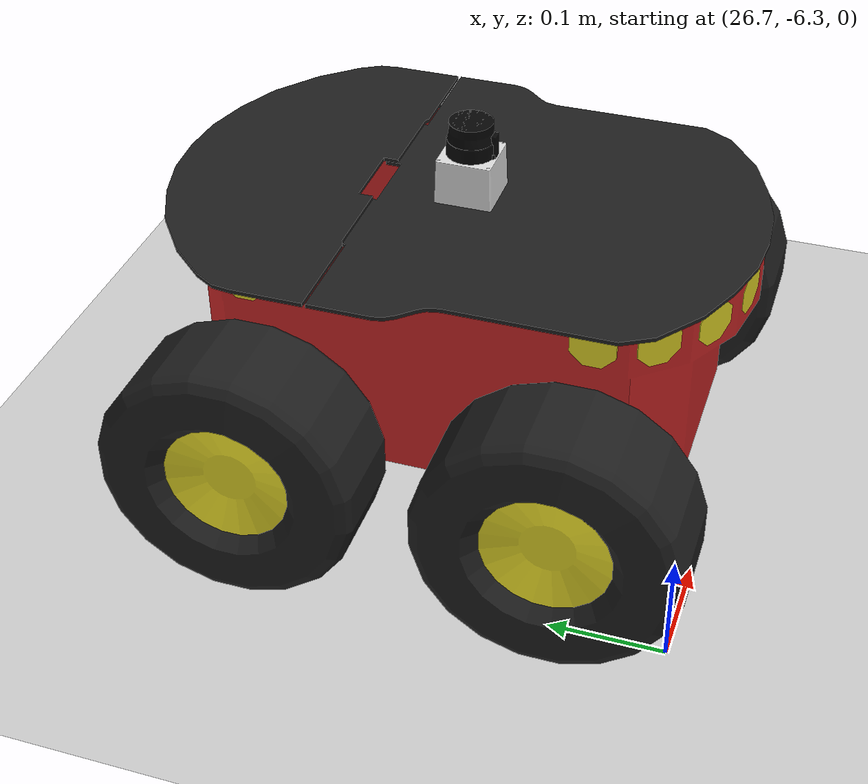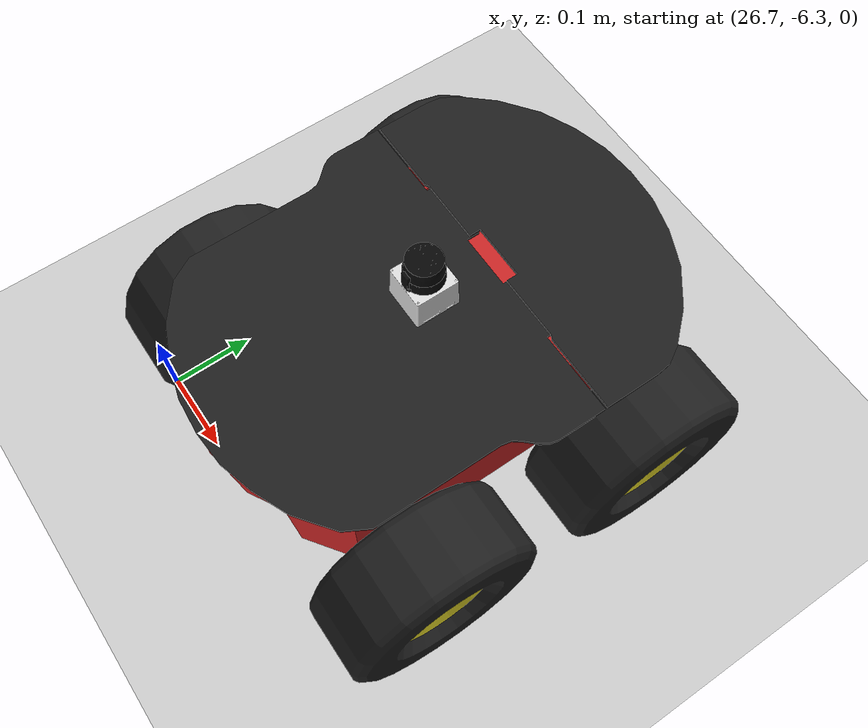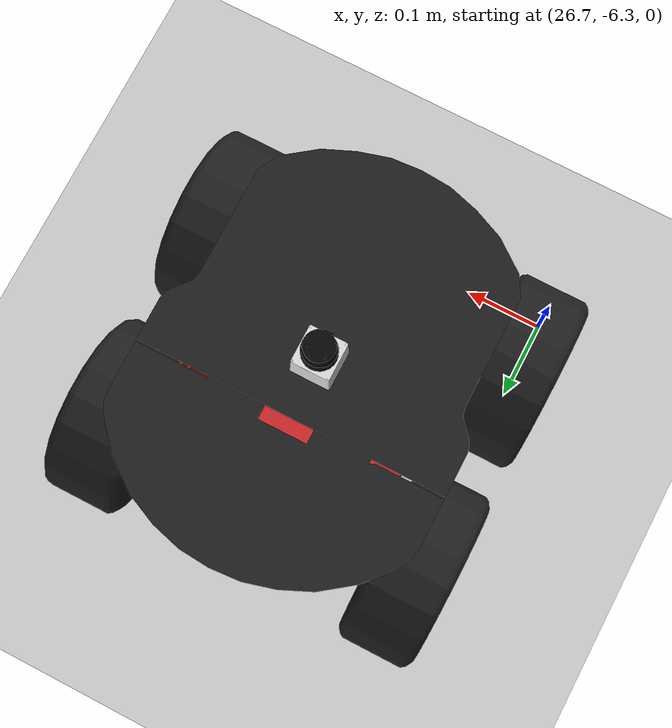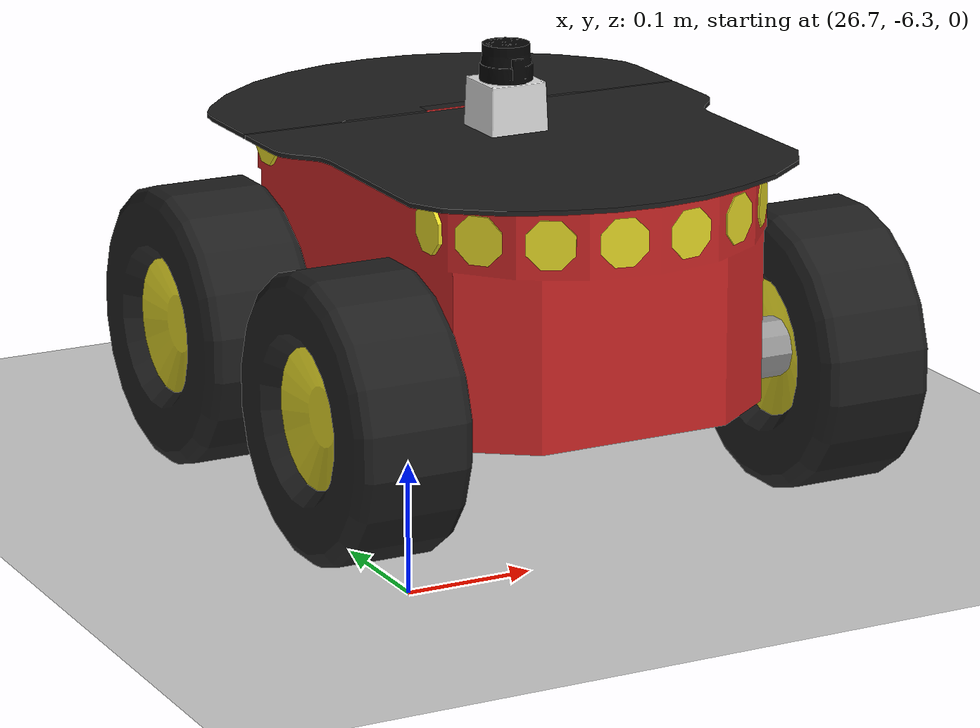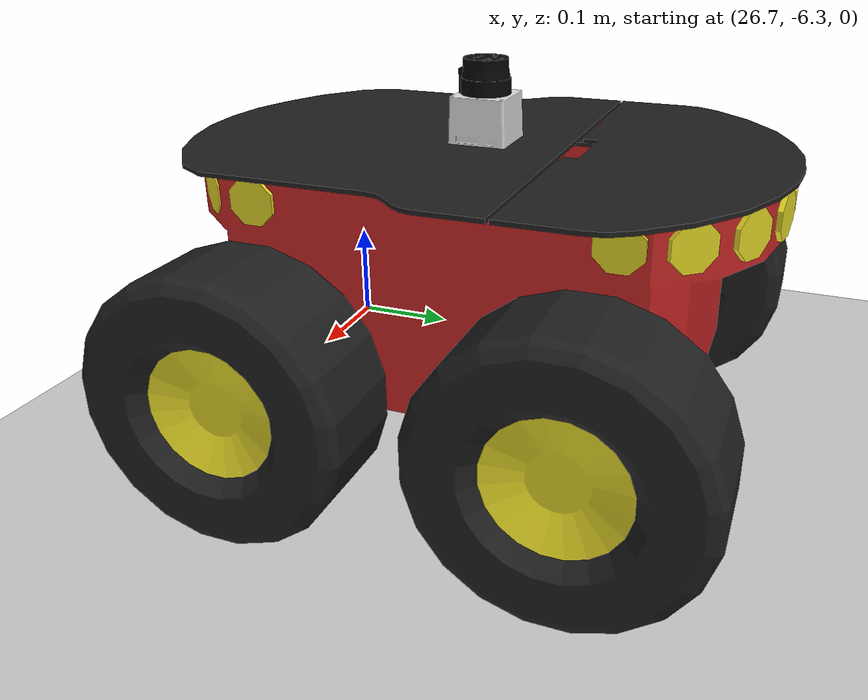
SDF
<sdf version="1.6">
 <world name="default">
  <model name="ground_plane">
   <static>1</static>
   <link name="link">
    <collision name="collision">
     <geometry><plane><normal>0 0 1</normal><size>100 100</size></plane></geometry>
     <surface><friction><ode><mu>100</mu><mu2>50</mu2></ode></friction></surface>
    </collision>
    <visual name="visual">
     <cast_shadows>0</cast_shadows>
     <geometry><plane><normal>0 0 1</normal><size>100 100</size></plane></geometry>
     <material>
      <script><uri>file://media/materials/scripts/gazebo.material</uri><name>Gazebo/Grey</name></script>
     </material>
    </visual>
   </link>
  </model>
  <model name="pioneer2">
   <link name="base_link">
    <inertial>
     <pose>-0.095186 0 0.174739 0 -0 0</pose>
     <mass>22.6</mass>
     <inertia>
      <ixx>11.365</ixx>
      <ixy>-6.60484e-19</ixy>
      <ixz>0.00451317</ixz>
      <iyy>11.5163</iyy>
      <iyz>1.2125e-18</iyz>
      <izz>11.391</izz>
     </inertia>
    </inertial>
    <collision name="base_link_collision">
     <pose>0 0 0.177 0 -0 0</pose>
     <geometry>
      <mesh>
       <scale>1 1 1</scale>
       <uri>/home/andrej/ANPL/infrastructure/base_ws/src/amr-ros-config/description/meshes/p3at_meshes/chassis.stl</uri>
      </mesh>
     </geometry>
    </collision>
    <collision name="base_link_fixed_joint_lump__hokuyo_link_collision_1">
     <pose>0 0 0.31 0 -0 0</pose>
     <geometry><box><size>0.1 0.1 0.1</size></box></geometry>
    </collision>
    <collision name="base_link_fixed_joint_lump__p3at_back_left_axle_collision_2">
     <pose>-0.134 0.156 0.111 0 -0 0</pose>
     <geometry>
      <mesh>
       <scale>1 1 1</scale>
       <uri>/home/andrej/ANPL/infrastructure/base_ws/src/amr-ros-config/description/meshes/p3at_meshes/axle.stl</uri>
      </mesh>
     </geometry>
    </collision>
    <collision name="base_link_fixed_joint_lump__p3at_back_left_hub_collision_3">
     <pose>-0.134 0.197 0.111 0 -0 0</pose>
     <geometry>
      <mesh>
       <scale>1 1 1</scale>
       <uri>/home/andrej/ANPL/infrastructure/base_ws/src/amr-ros-config/description/meshes/p3at_meshes/left_hubcap.stl</uri>
      </mesh>
     </geometry>
    </collision>
    <collision name="base_link_fixed_joint_lump__p3at_back_right_axle_collision_4">
     <pose>-0.134 -0.156 0.111 0 -0 0</pose>
     <geometry>
      <mesh>
       <scale>1 1 1</scale>
       <uri>/home/andrej/ANPL/infrastructure/base_ws/src/amr-ros-config/description/meshes/p3at_meshes/axle.stl</uri>
      </mesh>
     </geometry>
    </collision>
    <collision name="base_link_fixed_joint_lump__p3at_back_right_hub_collision_5">
     <pose>-0.134 -0.197 0.111 0 -0 0</pose>
     <geometry>
      <mesh>
       <scale>1 1 1</scale>
       <uri>/home/andrej/ANPL/infrastructure/base_ws/src/amr-ros-config/description/meshes/p3at_meshes/right_hubcap.stl</uri>
      </mesh>
     </geometry>
    </collision>
    <visual name="base_link_visual">
     <pose>0 0 0.177 0 -0 0</pose>
     <geometry>
      <mesh>
       <scale>1 1 1</scale>
       <uri>/home/andrej/ANPL/infrastructure/base_ws/src/amr-ros-config/description/meshes/p3at_meshes/chassis.stl</uri>
      </mesh>
     </geometry>
     <material>
      <script><name>Gazebo/Red</name><uri>file://media/materials/scripts/gazebo.material</uri></script>
     </material>
    </visual>
    <visual name="base_link_fixed_joint_lump__back_sonar_visual_1">
     <pose>-0.187 0 0.247 0 -0 0</pose>
     <geometry>
      <mesh>
       <scale>1 1 1</scale>
       <uri>/home/andrej/ANPL/infrastructure/base_ws/src/amr-ros-config/description/meshes/p3at_meshes/back_sonar.stl</uri>
      </mesh>
     </geometry>
     <material>
      <script><name>Gazebo/Yellow</name><uri>file://media/materials/scripts/gazebo.material</uri></script>
     </material>
    </visual>
    <visual name="base_link_fixed_joint_lump__front_sonar_visual_2">
     <pose>0.193 0 0.25 0 -0 0</pose>
     <geometry>
      <mesh>
       <scale>1 1 1</scale>
       <uri>/home/andrej/ANPL/infrastructure/base_ws/src/amr-ros-config/description/meshes/p3at_meshes/front_sonar.stl</uri>
      </mesh>
     </geometry>
     <material>
      <script><name>Gazebo/Yellow</name><uri>file://media/materials/scripts/gazebo.material</uri></script>
     </material>
    </visual>
    <visual name="base_link_fixed_joint_lump__p3at_front_left_axle_visual_3">
     <pose>0.135 0.156 0.111 0 -0 0</pose>
     <geometry>
      <mesh>
       <scale>1 1 1</scale>
       <uri>/home/andrej/ANPL/infrastructure/base_ws/src/amr-ros-config/description/meshes/p3at_meshes/axle.stl</uri>
      </mesh>
     </geometry>
     <material>
      <script><name>Gazebo/Grey</name><uri>file://media/materials/scripts/gazebo.material</uri></script>
     </material>
    </visual>
    <visual name="base_link_fixed_joint_lump__p3at_front_left_hub_visual_4">
     <pose>0.135 0.197 0.111 0 -0 0</pose>
     <geometry>
      <mesh>
       <scale>1 1 1</scale>
       <uri>/home/andrej/ANPL/infrastructure/base_ws/src/amr-ros-config/description/meshes/p3at_meshes/left_hubcap.stl</uri>
      </mesh>
     </geometry>
     <material>
      <script><name>Gazebo/Yellow</name><uri>file://media/materials/scripts/gazebo.material</uri></script>
     </material>
    </visual>
    <visual name="base_link_fixed_joint_lump__p3at_front_right_axle_visual_5">
     <pose>0.135 -0.156 0.111 0 -0 0</pose>
     <geometry>
      <mesh>
       <scale>1 1 1</scale>
       <uri>/home/andrej/ANPL/infrastructure/base_ws/src/amr-ros-config/description/meshes/p3at_meshes/axle.stl</uri>
      </mesh>
     </geometry>
     <material>
      <script><name>Gazebo/Grey</name><uri>file://media/materials/scripts/gazebo.material</uri></script>
     </material>
    </visual>
    <visual name="base_link_fixed_joint_lump__p3at_front_right_hub_visual_6">
     <pose>0.135 -0.197 0.111 0 -0 0</pose>
     <geometry>
      <mesh>
       <scale>1 1 1</scale>
       <uri>/home/andrej/ANPL/infrastructure/base_ws/src/amr-ros-config/description/meshes/p3at_meshes/right_hubcap.stl</uri>
      </mesh>
     </geometry>
     <material>
      <script><name>Gazebo/Yellow</name><uri>file://media/materials/scripts/gazebo.material</uri></script>
     </material>
    </visual>
    <visual name="base_link_fixed_joint_lump__top_plate_visual_7">
     <pose>0.003 0 0.274 0 -0 0</pose>
     <geometry>
      <mesh>
       <scale>1 1 1</scale>
       <uri>/home/andrej/ANPL/infrastructure/base_ws/src/amr-ros-config/description/meshes/p3at_meshes/top.stl</uri>
      </mesh>
     </geometry>
     <material>
      <script><name>Gazebo/Black</name><uri>file://media/materials/scripts/gazebo.material</uri></script>
     </material>
    </visual>
    <visual name="base_link_fixed_joint_lump__hokuyo_link_visual_8">
     <pose>0 0 0.31 0 -0 0</pose>
     <geometry>
      <mesh>
       <scale>1 1 1</scale>
       <uri>/home/andrej/ANPL/infrastructure/base_ws/src/anpl_inf/gazebo_models/hokuyo/meshes/hokuyo.dae</uri>
      </mesh>
     </geometry>
     <material><script><uri>__default__</uri><name>__default__</name></script></material>
    </visual>
    <visual name="base_link_fixed_joint_lump__p3at_back_left_axle_visual_9">
     <pose>-0.134 0.156 0.111 0 -0 0</pose>
     <geometry>
      <mesh>
       <scale>1 1 1</scale>
       <uri>/home/andrej/ANPL/infrastructure/base_ws/src/amr-ros-config/description/meshes/p3at_meshes/axle.stl</uri>
      </mesh>
     </geometry>
     <material>
      <script><name>Gazebo/Grey</name><uri>file://media/materials/scripts/gazebo.material</uri></script>
     </material>
    </visual>
    <visual name="base_link_fixed_joint_lump__p3at_back_left_hub_visual_10">
     <pose>-0.134 0.197 0.111 0 -0 0</pose>
     <geometry>
      <mesh>
       <scale>1 1 1</scale>
       <uri>/home/andrej/ANPL/infrastructure/base_ws/src/amr-ros-config/description/meshes/p3at_meshes/left_hubcap.stl</uri>
      </mesh>
     </geometry>
     <material>
      <script><name>Gazebo/Yellow</name><uri>file://media/materials/scripts/gazebo.material</uri></script>
     </material>
    </visual>
    <visual name="base_link_fixed_joint_lump__p3at_back_right_axle_visual_11">
     <pose>-0.134 -0.156 0.111 0 -0 0</pose>
     <geometry>
      <mesh>
       <scale>1 1 1</scale>
       <uri>/home/andrej/ANPL/infrastructure/base_ws/src/amr-ros-config/description/meshes/p3at_meshes/axle.stl</uri>
      </mesh>
     </geometry>
     <material>
      <script><name>Gazebo/Grey</name><uri>file://media/materials/scripts/gazebo.material</uri></script>
     </material>
    </visual>
    <visual name="base_link_fixed_joint_lump__p3at_back_right_hub_visual_12">
     <pose>-0.134 -0.197 0.111 0 -0 0</pose>
     <geometry>
      <mesh>
       <scale>1 1 1</scale>
       <uri>/home/andrej/ANPL/infrastructure/base_ws/src/amr-ros-config/description/meshes/p3at_meshes/right_hubcap.stl</uri>
      </mesh>
     </geometry>
     <material>
      <script><name>Gazebo/Yellow</name><uri>file://media/materials/scripts/gazebo.material</uri></script>
     </material>
    </visual>
    <sensor name="head_hokuyo_sensor" type="ray">
     <visualize>0</visualize>
     <update_rate>40</update_rate>
     <ray>
      <scan>
       <horizontal>
        <samples>720</samples>
        <resolution>1</resolution>
        <min_angle>-2.35619</min_angle>
        <max_angle>2.35619</max_angle>
       </horizontal>
       <vertical><samples>1</samples><min_angle>0</min_angle><max_angle>0</max_angle></vertical>
      </scan>
      <range><min>0.1</min><max>30</max><resolution>0.01</resolution></range>
      <noise><type>gaussian</type><mean>0</mean><stddev>0.01</stddev></noise>
     </ray>
     <plugin name="gazebo_ros_head_hokuyo_controller" filename="libgazebo_ros_laser.so">
      <topicName>laser/scan</topicName>
      <frameName>hokuyo_link</frameName>
      <robotNamespace>/pioneer2/</robotNamespace>
     </plugin>
     <pose>0 0 0.31 0 -0 0</pose>
    </sensor>
   </link>
   <link name="p3at_front_left_wheel">
    <pose>0.135 0.197 0.111 0 -0 0</pose>
    <inertial>
     <mass>1.2</mass>
     <inertia>
      <ixx>0.0124118</ixx>
      <ixy>0</ixy>
      <ixz>0</ixz>
      <iyy>0.0152182</iyy>
      <iyz>0</iyz>
      <izz>0.011764</izz>
     </inertia>
    </inertial>
    <collision name="p3at_front_left_wheel_collision">
     <pose>0 0 0 -1.5708 0 0</pose>
     <geometry><cylinder><length>0.075</length><radius>0.111</radius></cylinder></geometry>
     <surface>
      <contact><ode><kp>1e+06</kp><kd>100</kd><max_vel>1</max_vel><min_depth>0</min_depth></ode></contact>
      <friction><ode><mu>1</mu><mu2>1</mu2></ode></friction>
     </surface>
    </collision>
    <visual name="p3at_front_left_wheel_visual">
     <geometry>
      <mesh>
       <scale>1 1 1</scale>
       <uri>/home/andrej/ANPL/infrastructure/base_ws/src/amr-ros-config/description/meshes/p3at_meshes/wheel.stl</uri>
      </mesh>
     </geometry>
     <material>
      <script><name>Gazebo/Black</name><uri>file://media/materials/scripts/gazebo.material</uri></script>
     </material>
    </visual>
   </link>
   <joint name="p3at_front_left_wheel_joint" type="revolute">
    <child>p3at_front_left_wheel</child>
    <parent>base_link</parent>
    <axis>
     <xyz>0 1 0</xyz>
     <limit><lower>-1e+16</lower><upper>1e+16</upper></limit>
     <dynamics><spring_reference>0</spring_reference><spring_stiffness>0</spring_stiffness></dynamics>
     <use_parent_model_frame>1</use_parent_model_frame>
    </axis>
   </joint>
   <link name="p3at_front_right_wheel">
    <pose>0.135 -0.197 0.111 0 -0 0</pose>
    <inertial>
     <mass>1.2</mass>
     <inertia>
      <ixx>0.0124118</ixx>
      <ixy>0</ixy>
      <ixz>0</ixz>
      <iyy>0.0152182</iyy>
      <iyz>0</iyz>
      <izz>0.011764</izz>
     </inertia>
    </inertial>
    <collision name="p3at_front_right_wheel_collision">
     <pose>0 0 0 -1.5708 0 0</pose>
     <geometry><cylinder><length>0.075</length><radius>0.111</radius></cylinder></geometry>
     <surface>
      <contact><ode><kp>1e+06</kp><kd>100</kd><max_vel>1</max_vel><min_depth>0</min_depth></ode></contact>
      <friction><ode><mu>1</mu><mu2>1</mu2></ode></friction>
     </surface>
    </collision>
    <visual name="p3at_front_right_wheel_visual">
     <geometry>
      <mesh>
       <scale>1 1 1</scale>
       <uri>/home/andrej/ANPL/infrastructure/base_ws/src/amr-ros-config/description/meshes/p3at_meshes/wheel.stl</uri>
      </mesh>
     </geometry>
     <material>
      <script><name>Gazebo/Black</name><uri>file://media/materials/scripts/gazebo.material</uri></script>
     </material>
    </visual>
   </link>
   <joint name="p3at_front_right_wheel_joint" type="revolute">
    <child>p3at_front_right_wheel</child>
    <parent>base_link</parent>
    <axis>
     <xyz>0 1 0</xyz>
     <limit><lower>-1e+16</lower><upper>1e+16</upper></limit>
     <dynamics><spring_reference>0</spring_reference><spring_stiffness>0</spring_stiffness></dynamics>
     <use_parent_model_frame>1</use_parent_model_frame>
    </axis>
   </joint>
   <link name="p3at_back_left_wheel">
    <pose>-0.134 0.197 0.111 0 -0 0</pose>
    <inertial>
     <mass>1.2</mass>
     <inertia>
      <ixx>0.0124118</ixx>
      <ixy>0</ixy>
      <ixz>0</ixz>
      <iyy>0.0152182</iyy>
      <iyz>0</iyz>
      <izz>0.011764</izz>
     </inertia>
    </inertial>
    <collision name="p3at_back_left_wheel_collision">
     <pose>0 0 0 -1.5708 0 0</pose>
     <geometry><cylinder><length>0.075</length><radius>0.111</radius></cylinder></geometry>
     <surface>
      <contact><ode><kp>1e+06</kp><kd>100</kd><max_vel>1</max_vel><min_depth>0</min_depth></ode></contact>
      <friction><ode><mu>1</mu><mu2>1</mu2></ode></friction>
     </surface>
    </collision>
    <visual name="p3at_back_left_wheel_visual">
     <geometry>
      <mesh>
       <scale>1 1 1</scale>
       <uri>/home/andrej/ANPL/infrastructure/base_ws/src/amr-ros-config/description/meshes/p3at_meshes/wheel.stl</uri>
      </mesh>
     </geometry>
     <material>
      <script><name>Gazebo/Black</name><uri>file://media/materials/scripts/gazebo.material</uri></script>
     </material>
    </visual>
   </link>
   <joint name="p3at_back_left_wheel_joint" type="revolute">
    <child>p3at_back_left_wheel</child>
    <parent>base_link</parent>
    <axis>
     <xyz>0 1 0</xyz>
     <limit><lower>-1e+16</lower><upper>1e+16</upper></limit>
     <dynamics><spring_reference>0</spring_reference><spring_stiffness>0</spring_stiffness></dynamics>
     <use_parent_model_frame>1</use_parent_model_frame>
    </axis>
   </joint>
   <link name="p3at_back_right_wheel">
    <pose>-0.134 -0.197 0.111 0 -0 0</pose>
    <inertial>
     <mass>1.2</mass>
     <inertia>
      <ixx>0.0124118</ixx>
      <ixy>0</ixy>
      <ixz>0</ixz>
      <iyy>0.0152182</iyy>
      <iyz>0</iyz>
      <izz>0.011764</izz>
     </inertia>
    </inertial>
    <collision name="p3at_back_right_wheel_collision">
     <pose>0 0 0 -1.5708 0 0</pose>
     <geometry><cylinder><length>0.075</length><radius>0.111</radius></cylinder></geometry>
     <surface>
      <contact><ode><kp>1e+06</kp><kd>100</kd><max_vel>1</max_vel><min_depth>0</min_depth></ode></contact>
      <friction><ode><mu>1</mu><mu2>1</mu2></ode></friction>
     </surface>
    </collision>
    <visual name="p3at_back_right_wheel_visual">
     <geometry>
      <mesh>
       <scale>1 1 1</scale>
       <uri>/home/andrej/ANPL/infrastructure/base_ws/src/amr-ros-config/description/meshes/p3at_meshes/wheel.stl</uri>
      </mesh>
     </geometry>
     <material>
      <script><name>Gazebo/Black</name><uri>file://media/materials/scripts/gazebo.material</uri></script>
     </material>
    </visual>
   </link>
   <joint name="p3at_back_right_wheel_joint" type="revolute">
    <child>p3at_back_right_wheel</child>
    <parent>base_link</parent>
    <axis>
     <xyz>0 1 0</xyz>
     <limit><lower>-1e+16</lower><upper>1e+16</upper></limit>
     <dynamics><spring_reference>0</spring_reference><spring_stiffness>0</spring_stiffness></dynamics>
     <use_parent_model_frame>1</use_parent_model_frame>
    </axis>
   </joint>
   <static>0</static>
   <plugin name="skid_steer_drive_controller" filename="libgazebo_ros_skid_steer_drive.so">
    <updateRate>100.0</updateRate>
    <robotNamespace>pioneer2</robotNamespace>
    <leftFrontJoint>p3at_front_left_wheel_joint</leftFrontJoint>
    <rightFrontJoint>p3at_front_right_wheel_joint</rightFrontJoint>
    <leftRearJoint>p3at_back_left_wheel_joint</leftRearJoint>
    <rightRearJoint>p3at_back_right_wheel_joint</rightRearJoint>
    <wheelSeparation>0.4</wheelSeparation>
    <wheelDiameter>0.215</wheelDiameter>
    <robotBaseFrame>base_link</robotBaseFrame>
    <MaxForce>5.0</MaxForce>
    <torque>200</torque>
    <commandTopic>cmd_vel</commandTopic>
    <odometryTopic>odom</odometryTopic>
    <odometryFrame>odom</odometryFrame>
    <broadcastTF>1</broadcastTF>
    <covariance_x>0.0001</covariance_x>
    <covariance_y>0.0001</covariance_y>
    <covariance_yaw>0.01</covariance_yaw>
   </plugin>
   <pose>26.9 -6.07 -3.3e-05 -0 -0.000145 1.57</pose>
  </model>
 </world>
</sdf>
